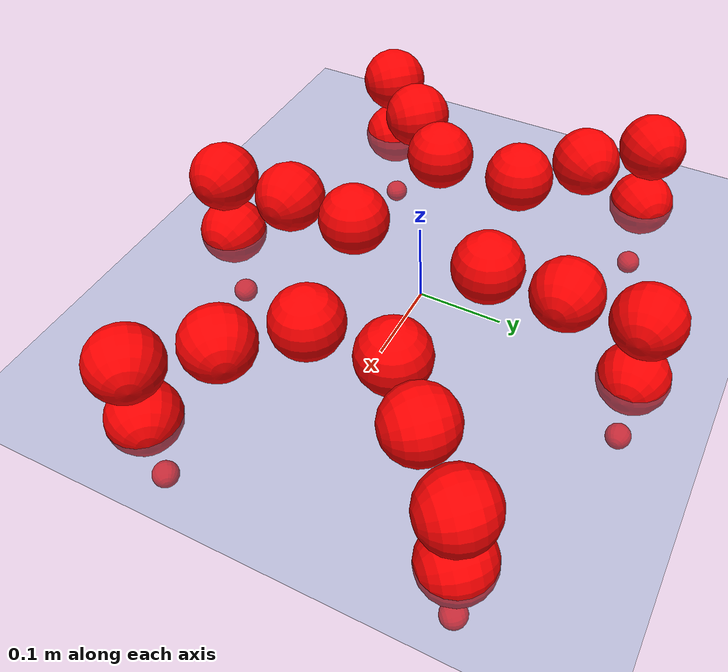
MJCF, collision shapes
<mujoco model="Golem">
  <compiler angle="radian" assetdir="assets" balanceinertia="true" inertiafromgeom="false"/>

  <option timestep="0.005" density="1.2" viscosity="2e-05"/>

  <size nkey="1"/>

  <visual>
    <quality shadowsize="8192"/>
    <map shadowclip="0.5"/>
  </visual>

  <default>
    <default class="/">
      <joint armature="0.01" damping="0.01" frictionloss="0.01"/>
      <geom contype="0" conaffinity="0" group="1" solref="-1000 -80"/>
      <site size="0.01 0.005 0.005" group="5"/>
      <general forcelimited="true" biastype="affine" gainprm="25" biasprm="0 -25 -0.5"/>
      <default class="visual">
        <geom type="mesh" group="2"/>
      </default>
      <default class="collision">
        <geom group="3"/>
      </default>
      <default class="foot">
        <geom size="0.01 0 0" condim="6" group="4" priority="1" solimp="0.015 1 0.01"/>
      </default>
      <default class="reward_collision_sphere">
        <geom group="5" rgba="1 0 0 1"/>
      </default>
    </default>
  </default>

  <asset>
    <texture type="skybox" colorspace="auto" name="//unnamed_texture_0" builtin="gradient" rgb1="0.95 0.95 0.95" rgb2="0.95 0.95 0.95" width="100" height="600"/>
    <texture type="2d" colorspace="auto" name="texplane" builtin="checker" rgb1="0.345 0.575 0.748" rgb2="0.345 0.575 0.748" markrgb="1 1 1" width="512" height="512"/>
    <material name="MatPlane" class="/" texture="texplane" texuniform="true" texrepeat="2 2" specular="0.9"/>
    <mesh name="body" class="/" file="body.stl" scale="0.001 0.001 0.001"/>
    <mesh name="coxa" class="/" file="coxa.stl" scale="0.001 0.001 0.001"/>
    <mesh name="femur" class="/" file="femur.stl" scale="0.001 0.001 0.001"/>
    <mesh name="tibia" class="/" file="tibia.stl" scale="0.001 0.001 0.001"/>
    <mesh name="tarsus" class="/" file="tarsus.stl" scale="0.001 0.001 0.001"/>
  </asset>

  <worldbody>
    <geom name="floor" class="/" size="100 100 0.125" type="plane" group="0" material="MatPlane"/>
    <light name="toplight_shadow" class="/" pos="0 0 5" dir="0.0990148 0.0990148 -0.990148" type="directional" ambient="0.04 0.04 0.04" diffuse="0.55 0.55 0.55" specular="0.12 0.12 0.12"/>
    <light name="toplight_fill" class="/" pos="0 0 5" dir="0.0990148 0.0990148 -0.990148" type="directional" castshadow="false" ambient="0.04 0.04 0.04" diffuse="0.3 0.3 0.3" specular="0.08 0.08 0.08"/>
    <body name="trunk" pos="-0.000802555 -0.000841721 -0.000198775" quat="1 -0.000396883 0.000526322 -0.000557723">
      <inertial pos="-0.00149459 -0.00283655 -0.00339318" quat="0.999948 -0.000443388 0.00827946 -0.00598853" mass="4.13464" diaginertia="0.0107662 0.00472751 0.029553"/>
      <joint name="//unnamed_joint_0" type="free"/>
      <geom name="//unnamed_geom_1" class="/" pos="0 0 0.0788713" quat="1 0 0 0" type="mesh" rgba="0.9 0.9 0.9 1" mesh="body"/>
      <site name="imu" class="/" pos="0.135469 -0.00107893 0.111687" size="0.0103202"/>
      <camera name="track" class="/" pos="0 -1.71569 0" quat="0.707107 0.707107 0 0" mode="trackcom"/>
      <camera name="ego_camera" class="/" pos="0.130763 0 0.123236" quat="-0.5 -0.5 0.5 0.5"/>
      <body name="coxa_RR" pos="-0.178747 -0.0718603 0.0797035" quat="0.382822 0.000220573 0.00015142 -0.923822">
        <inertial pos="0.00153981 0.00258501 0.0026277" quat="0.999896 0.00989667 -0.00886879 0.0056285" mass="0.210612" diaginertia="0.010132 0.00473675 0.0270785"/>
        <joint name="coxa_joint_RR" class="/" pos="0 0 0" axis="-0.00653746 0.000413765 -0.999979" range="-3.14084 3.19444" armature="0.00903363" damping="0.000460271" frictionloss="0.0104864"/>
        <geom name="//unnamed_geom_2" class="/" type="mesh" rgba="0.2 0.2 0.2 1" mesh="coxa"/>
        <geom name="//unnamed_geom_3" class="reward_collision_sphere" size="0.041281" pos="-0.030176 0 0"/>
        <body name="femur_RR" pos="0.0619881 -0.000509254 -0.000597559" quat="0.50039 -0.5002 0.50029 0.499119">
          <inertial pos="-0.00119828 0.00248091 0.00103423" quat="0.999989 -0.00443827 0.000356679 -0.00116414" mass="0.212041" diaginertia="0.0100352 0.00451127 0.0283299"/>
          <joint name="femur_joint_RR" class="/" pos="0 0 0" axis="-0.00527977 -0.00362423 -0.999979" range="-3.10072 3.1067" armature="0.0103648" damping="0.034733" frictionloss="0.0116721"/>
          <geom name="//unnamed_geom_4" class="/" type="mesh" rgba="0.9 0.9 0.9 1" mesh="femur"/>
          <geom name="//unnamed_geom_5" class="reward_collision_sphere" size="0.041281"/>
          <body name="tibia_RR" pos="0.00182697 -0.0944354 0.00221038" quat="-0.00103732 0.999999 -0.000280432 -0.000319315">
            <inertial pos="-0.000687845 0.00123709 -0.000116699" quat="0.999916 0.00389915 -0.00604399 0.0107425" mass="0.209494" diaginertia="0.0105107 0.004571 0.0282434"/>
            <joint name="tibia_joint_RR" class="/" pos="0 0 0" axis="-4.85439e-05 1.76139e-05 1" range="-3.19257 3.157" armature="0.0104244" damping="0.0107834" frictionloss="0.00985928"/>
            <geom name="//unnamed_geom_6" class="/" type="mesh" rgba="0.2 0.2 0.2 1" mesh="tibia"/>
            <geom name="//unnamed_geom_7" class="reward_collision_sphere" size="0.041281"/>
            <body name="tarsus_RR" pos="0.0896919 0.00042303 -0.00072026" quat="1 -0.000109894 0.000400472 0.00071818">
              <inertial pos="0.0615084 -0.000123575 -0.00260044" quat="0.499194 0.500654 0.497113 0.50302" mass="0.215352" diaginertia="0.00986286 0.00455726 0.0278223"/>
              <joint name="tarsus_joint_RR" class="/" pos="0 0 0" axis="-0.0187325 0.00717933 0.999799" range="-3.15074 3.14239" armature="0.0109412" damping="0.0485416" frictionloss="0.0102118"/>
              <geom name="//unnamed_geom_8" class="/" type="mesh" rgba="0.9 0.9 0.9 1" mesh="tarsus"/>
              <geom name="foot_1" class="foot" size="0.00930255" pos="0.112657 0 0" quat="0 -0.707107 0 0.707107"/>
              <geom name="//unnamed_geom_10" class="reward_collision_sphere" size="0.041281"/>
              <geom name="//unnamed_geom_11" class="reward_collision_sphere" size="0.0154804" pos="0.108131 0 0"/>
              <site name="foot_1" class="foot" pos="0.112657 0 0" quat="0 -0.707107 0 0.707107" size="0.0103202"/>
            </body>
          </body>
        </body>
      </body>
      <body name="coxa_RM" pos="0.00112567 -0.114299 0.0845726" quat="0.707014 0.000861442 -0.000771066 -0.707199">
        <inertial pos="0.000981861 -8.18156e-05 -0.00200804" quat="0.99999 0.000808822 0.00432024 2.26404e-05" mass="0.215823" diaginertia="0.0098222 0.00470468 0.0277157"/>
        <joint name="coxa_joint_RM" class="/" pos="0 0 0" axis="0.000278677 -3.71872e-05 -1" stiffness="0.00486214" range="-3.13297 3.15074" armature="0.0108148" damping="0.0199119" frictionloss="0.0107992"/>
        <geom name="//unnamed_geom_12" class="/" type="mesh" rgba="0.2 0.2 0.2 1" mesh="coxa"/>
        <geom name="//unnamed_geom_13" class="reward_collision_sphere" size="0.041281" pos="-0.030176 0 0"/>
        <body name="femur_RM" pos="0.0571526 -0.0024025 -0.000798583" quat="0.499702 -0.500704 0.500254 0.499339">
          <inertial pos="0.000763571 -0.00215491 0.00263916" quat="0.999937 0.00681166 -0.00895364 -0.000245251" mass="0.234701" diaginertia="0.0103383 0.00478537 0.0285486"/>
          <joint name="femur_joint_RM" class="/" pos="0 0 0" axis="0.00174668 0.00168433 -0.999997" range="-3.08955 3.08674" armature="0.0103" damping="0.0262497" frictionloss="0.0104136"/>
          <geom name="//unnamed_geom_14" class="/" type="mesh" rgba="0.9 0.9 0.9 1" mesh="femur"/>
          <geom name="//unnamed_geom_15" class="reward_collision_sphere" size="0.041281"/>
          <body name="tibia_RM" pos="0.000747019 -0.0922985 0.00229302" quat="0.000502241 0.999999 0.00112542 0.000570002">
            <inertial pos="-0.00110402 0.000865674 -0.0025381" quat="0.999997 -0.00158592 -0.00201151 -0.000165203" mass="0.221913" diaginertia="0.0102806 0.00465667 0.0290698"/>
            <joint name="tibia_joint_RM" class="/" pos="0 0 0" axis="-0.0123208 0.00262574 0.999921" stiffness="0.0114489" range="-3.14115 3.14778" armature="0.00954168" damping="0.00566809" frictionloss="0.00898619"/>
            <geom name="//unnamed_geom_16" class="/" type="mesh" rgba="0.2 0.2 0.2 1" mesh="tibia"/>
            <geom name="//unnamed_geom_17" class="reward_collision_sphere" size="0.041281"/>
            <body name="tarsus_RM" pos="0.0868194 0.00109892 -0.000324229" quat="1 -0.000432679 -0.000288568 -0.000126074">
              <inertial pos="0.0615129 0.000642078 0.000514657" quat="0.491007 0.509914 0.497601 0.501291" mass="0.220654" diaginertia="0.0103048 0.00466522 0.0299708"/>
              <joint name="tarsus_joint_RM" class="/" pos="0 0 0" axis="-0.00110067 -0.000435803 0.999999" stiffness="0.00409189" range="-3.16096 3.08642" armature="0.00925268" damping="0.0101017" frictionloss="0.0116784"/>
              <geom name="//unnamed_geom_18" class="/" type="mesh" rgba="0.9 0.9 0.9 1" mesh="tarsus"/>
              <geom name="foot_2" class="foot" size="0.0114332" pos="0.112657 0 0" quat="0 -0.707107 0 0.707107"/>
              <geom name="//unnamed_geom_20" class="reward_collision_sphere" size="0.041281"/>
              <geom name="//unnamed_geom_21" class="reward_collision_sphere" size="0.0154804" pos="0.108131 0 0"/>
              <site name="foot_2" class="foot" pos="0.112657 0 0" quat="0 -0.707107 0 0.707107" size="0.0103202"/>
            </body>
          </body>
        </body>
      </body>
      <body name="coxa_RF" pos="0.180136 -0.0715161 0.0809079" quat="0.923831 0.000399789 0.000278646 -0.382799">
        <inertial pos="-0.00123018 -0.0014925 0.000160433" quat="0.999994 0.00188214 -0.0027397 -0.000459139" mass="0.224034" diaginertia="0.00995458 0.0045402 0.0280127"/>
        <joint name="coxa_joint_RF" class="/" pos="0 0 0" axis="0.00338496 0.0152273 -0.999878" stiffness="0.0205038" range="-3.08981 3.16925" armature="0.00881106" damping="0.0126508" frictionloss="0.0109629"/>
        <geom name="//unnamed_geom_22" class="/" type="mesh" rgba="0.2 0.2 0.2 1" mesh="coxa"/>
        <geom name="//unnamed_geom_23" class="reward_collision_sphere" size="0.041281" pos="-0.030176 0 0"/>
        <body name="femur_RF" pos="0.0612389 -0.000889996 -0.000161285" quat="0.500074 -0.500294 0.499887 0.499745">
          <inertial pos="3.33307e-05 -0.00196303 -0.00217568" quat="0.999998 -0.00111516 -0.000941055 -0.00115812" mass="0.229627" diaginertia="0.0105204 0.00475287 0.0296971"/>
          <joint name="femur_joint_RF" class="/" pos="0 0 0" axis="0.0121482 -0.00314396 -0.999921" range="-3.1544 3.09838" armature="0.00887584" damping="0.0103412" frictionloss="0.0105878"/>
          <geom name="//unnamed_geom_24" class="/" type="mesh" rgba="0.9 0.9 0.9 1" mesh="femur"/>
          <geom name="//unnamed_geom_25" class="reward_collision_sphere" size="0.041281"/>
          <body name="tibia_RF" pos="-0.00355914 -0.0904052 0.000600739" quat="0.000569192 1 0.000652862 -0.000485575">
            <inertial pos="0.00171692 -0.000377665 0.000917319" quat="0.999999 0.00115246 -0.000923702 -1.70884e-05" mass="0.213082" diaginertia="0.0104814 0.0045738 0.0273018"/>
            <joint name="tibia_joint_RF" class="/" pos="0 0 0" axis="-0.000559512 0.00469391 0.999989" range="-3.14355 3.10877" armature="0.011034" damping="0.000291177" frictionloss="0.0117295"/>
            <geom name="//unnamed_geom_26" class="/" type="mesh" rgba="0.2 0.2 0.2 1" mesh="tibia"/>
            <geom name="//unnamed_geom_27" class="reward_collision_sphere" size="0.041281"/>
            <body name="tarsus_RF" pos="0.0854111 -0.000642654 -0.000708888" quat="0.999999 0.00100991 -0.000428452 -0.00050146">
              <inertial pos="0.0584998 0.000162522 0.000596835" quat="0.494908 0.499348 0.500772 0.50492" mass="0.216241" diaginertia="0.00998389 0.00455071 0.0281099"/>
              <joint name="tarsus_joint_RF" class="/" pos="0 0 0" axis="-0.00960056 0.00971066 0.999907" stiffness="9.21924e-05" range="-3.14149 3.1381" armature="0.0103289" damping="0.00937889" frictionloss="0.0111769"/>
              <geom name="//unnamed_geom_28" class="/" type="mesh" rgba="0.9 0.9 0.9 1" mesh="tarsus"/>
              <geom name="foot_3" class="foot" size="0.00998609" pos="0.112657 0 0" quat="0 -0.707107 0 0.707107"/>
              <geom name="//unnamed_geom_30" class="reward_collision_sphere" size="0.041281"/>
              <geom name="//unnamed_geom_31" class="reward_collision_sphere" size="0.0154804" pos="0.108131 0 0"/>
              <site name="foot_3" class="foot" pos="0.112657 0 0" quat="0 -0.707107 0 0.707107" size="0.0103202"/>
            </body>
          </body>
        </body>
      </body>
      <body name="coxa_LR" pos="-0.182067 0.0750026 0.0791161" quat="0.382824 0.00039399 -8.62318e-05 0.923821">
        <inertial pos="0.000367713 0.000338985 0.00316138" quat="0.999991 0.000727939 0.00370099 0.001846" mass="0.2111" diaginertia="0.0102535 0.00468514 0.0290359"/>
        <joint name="coxa_joint_LR" class="/" pos="0 0 0" axis="-0.00252089 0.00097037 -0.999996" range="-3.14107 3.14209" armature="0.0090892" damping="0.0128257" frictionloss="0.00983219"/>
        <geom name="//unnamed_geom_32" class="/" type="mesh" rgba="0.2 0.2 0.2 1" mesh="coxa"/>
        <geom name="//unnamed_geom_33" class="reward_collision_sphere" size="0.041281" pos="-0.030176 0 0"/>
        <body name="femur_LR" pos="0.0589876 -0.000213604 0.00190745" quat="0.500122 -0.501077 0.499773 0.499026">
          <inertial pos="-0.000742791 -0.00141038 0.00219067" quat="0.999914 -0.0112111 0.00670894 0.000728345" mass="0.227849" diaginertia="0.010611 0.00453681 0.0290907"/>
          <joint name="femur_joint_LR" class="/" pos="0 0 0" axis="0.0129835 -0.00149523 0.999915" stiffness="0.0011283" range="-3.11981 3.12154" armature="0.0105077" damping="0.0137775" frictionloss="0.00892231"/>
          <geom name="//unnamed_geom_34" class="/" type="mesh" rgba="0.9 0.9 0.9 1" mesh="femur"/>
          <geom name="//unnamed_geom_35" class="reward_collision_sphere" size="0.041281"/>
          <body name="tibia_LR" pos="0.000950501 -0.0926008 0.00069818" quat="-7.24119e-06 0.999999 -0.00129668 2.37982e-05">
            <inertial pos="0.00257574 -0.00260071 0.00144809" quat="0.999968 -0.000441014 0.008016 -0.000157736" mass="0.220021" diaginertia="0.00997318 0.00452375 0.027395"/>
            <joint name="tibia_joint_LR" class="/" pos="0 0 0" axis="-0.00118255 0.00209038 -0.999997" range="-3.16743 3.14592" armature="0.00910293" damping="0.0150154" frictionloss="0.00892237"/>
            <geom name="//unnamed_geom_36" class="/" type="mesh" rgba="0.2 0.2 0.2 1" mesh="tibia"/>
            <geom name="//unnamed_geom_37" class="reward_collision_sphere" size="0.041281"/>
            <body name="tarsus_LR" pos="0.0879968 -0.00118917 0.00268889" quat="1 -0.000174958 -0.000261978 0.000366">
              <inertial pos="0.0623606 -0.000766808 0.00270428" quat="0.499329 0.500292 0.499617 0.500761" mass="0.210756" diaginertia="0.00993054 0.00466669 0.0281828"/>
              <joint name="tarsus_joint_LR" class="/" pos="0 0 0" axis="0.0072355 -0.00200486 -0.999972" stiffness="0.00809154" range="-3.17596 3.13234" armature="0.00919977" damping="0.0251043" frictionloss="0.0105633"/>
              <geom name="//unnamed_geom_38" class="/" type="mesh" rgba="0.9 0.9 0.9 1" mesh="tarsus"/>
              <geom name="foot_4" class="foot" size="0.0114607" pos="0.112657 0 0" quat="0.707107 0 -0.707107 0"/>
              <geom name="//unnamed_geom_40" class="reward_collision_sphere" size="0.041281"/>
              <geom name="//unnamed_geom_41" class="reward_collision_sphere" size="0.0154804" pos="0.108131 0 0"/>
              <site name="foot_4" class="foot" pos="0.112657 0 0" quat="0.707107 0 -0.707107 0" size="0.0103202"/>
            </body>
          </body>
        </body>
      </body>
      <body name="coxa_LM" pos="0.00272274 0.113493 0.0812201" quat="0.707929 -0.000168537 -0.000727577 0.706283">
        <inertial pos="-0.00122232 -0.00230193 0.00296422" quat="0.999999 0.000983148 0.000195867 -1.28019e-05" mass="0.218793" diaginertia="0.0106206 0.00464414 0.0282588"/>
        <joint name="coxa_joint_LM" class="/" pos="0 0 0" axis="-0.0145686 -0.000744316 -0.999894" range="-3.1067 3.10513" armature="0.010174" damping="0.0248975" frictionloss="0.0112391"/>
        <geom name="//unnamed_geom_42" class="/" type="mesh" rgba="0.2 0.2 0.2 1" mesh="coxa"/>
        <geom name="//unnamed_geom_43" class="reward_collision_sphere" size="0.041281" pos="-0.030176 0 0"/>
        <body name="femur_LM" pos="0.0605987 0.00142585 -0.00189622" quat="0.499905 -0.50037 0.49926 0.500464">
          <inertial pos="-0.00120047 0.0016496 -0.00217523" quat="0.999998 0.00151309 0.000937363 0.000560981" mass="0.226401" diaginertia="0.0106892 0.00472613 0.0302823"/>
          <joint name="femur_joint_LM" class="/" pos="0 0 0" axis="0.0129952 0.00716127 0.99989" stiffness="0.00388057" range="-3.08637 3.13741" armature="0.0115395" damping="0.00723428" frictionloss="0.0104736"/>
          <geom name="//unnamed_geom_44" class="/" type="mesh" rgba="0.9 0.9 0.9 1" mesh="femur"/>
          <geom name="//unnamed_geom_45" class="reward_collision_sphere" size="0.041281"/>
          <body name="tibia_LM" pos="-0.00133905 -0.0887231 -0.000573528" quat="4.98179e-05 1 -5.24119e-05 2.44556e-05">
            <inertial pos="0.00284653 -0.000690787 0.00237217" quat="0.999907 0.0107417 -0.00840364 0.000485675" mass="0.22503" diaginertia="0.010231 0.00454045 0.0271569"/>
            <joint name="tibia_joint_LM" class="/" pos="0 0 0" axis="0.00872358 -0.000573452 -0.999962" range="-3.19344 3.15329" armature="0.0101993" damping="0.00985321" frictionloss="0.00947159"/>
            <geom name="//unnamed_geom_46" class="/" type="mesh" rgba="0.2 0.2 0.2 1" mesh="tibia"/>
            <geom name="//unnamed_geom_47" class="reward_collision_sphere" size="0.041281"/>
            <body name="tarsus_LM" pos="0.0889344 -0.00101632 0.00263398" quat="1 -8.32787e-05 8.53096e-05 0.000151735">
              <inertial pos="0.0573252 0.00013386 -0.000404985" quat="0.493067 0.497513 0.506804 0.502509" mass="0.211107" diaginertia="0.0104935 0.00465519 0.0283396"/>
              <joint name="tarsus_joint_LM" class="/" pos="0 0 0" axis="0.00388595 -0.0119214 -0.999921" range="-3.14445 3.11662" armature="0.0108036" damping="0" frictionloss="0.0103897"/>
              <geom name="//unnamed_geom_48" class="/" type="mesh" rgba="0.9 0.9 0.9 1" mesh="tarsus"/>
              <geom name="foot_5" class="foot" size="0.0115242" pos="0.112657 0 0" quat="0.707107 0 -0.707107 0"/>
              <geom name="//unnamed_geom_50" class="reward_collision_sphere" size="0.041281"/>
              <geom name="//unnamed_geom_51" class="reward_collision_sphere" size="0.0154804" pos="0.108131 0 0"/>
              <site name="foot_5" class="foot" pos="0.112657 0 0" quat="0.707107 0 -0.707107 0" size="0.0103202"/>
            </body>
          </body>
        </body>
      </body>
      <body name="coxa_LF" pos="0.179648 0.0707381 0.0793989" quat="0.923991 6.97937e-05 0.000218371 0.382414">
        <inertial pos="-7.70122e-05 0.00263764 0.000418478" quat="1 -0.000383488 -0.000172362 3.28728e-05" mass="0.217226" diaginertia="0.0100159 0.00454291 0.0279988"/>
        <joint name="coxa_joint_LF" class="/" pos="0 0 0" axis="-0.00847017 0.00504149 -0.999951" range="-3.12786 3.08913" armature="0.011596" damping="0.00913121" frictionloss="0.01012"/>
        <geom name="//unnamed_geom_52" class="/" type="mesh" rgba="0.2 0.2 0.2 1" mesh="coxa"/>
        <geom name="//unnamed_geom_53" class="reward_collision_sphere" size="0.041281" pos="-0.030176 0 0"/>
        <body name="femur_LF" pos="0.0580195 -0.00249074 0.00268211" quat="0.500838 -0.500455 0.499915 0.49879">
          <inertial pos="0.000382803 0.00228532 -0.00272159" quat="0.999995 0.000576526 -0.000424433 0.0032188" mass="0.216541" diaginertia="0.00999939 0.00450915 0.0284503"/>
          <joint name="femur_joint_LF" class="/" pos="0 0 0" axis="0.000453974 -8.83573e-05 1" stiffness="0.00516362" range="-3.13262 3.16011" armature="0.0102832" damping="0.00730154" frictionloss="0.011533"/>
          <geom name="//unnamed_geom_54" class="/" type="mesh" rgba="0.9 0.9 0.9 1" mesh="femur"/>
          <geom name="//unnamed_geom_55" class="reward_collision_sphere" size="0.041281"/>
          <body name="tibia_LF" pos="0.00160088 -0.0942177 0.00281396" quat="0.0001699 0.999999 0.000149735 0.00125591">
            <inertial pos="0.0027768 0.00248153 0.0017495" quat="0.999983 0.00208777 -0.00349889 -0.00418189" mass="0.222567" diaginertia="0.0103092 0.00474802 0.0297255"/>
            <joint name="tibia_joint_LF" class="/" pos="0 0 0" axis="0.000259427 -0.000315511 -1" range="-3.15888 3.09766" armature="0.0118162" damping="0.0182447" frictionloss="0.0101151"/>
            <geom name="//unnamed_geom_56" class="/" type="mesh" rgba="0.2 0.2 0.2 1" mesh="tibia"/>
            <geom name="//unnamed_geom_57" class="reward_collision_sphere" size="0.041281"/>
            <body name="tarsus_LF" pos="0.086533 0.00206394 -0.000405303" quat="0.999999 -0.000311898 -0.00092106 0.000932359">
              <inertial pos="0.060642 0.000923342 0.000232818" quat="0.50084 0.500194 0.499621 0.499344" mass="0.218814" diaginertia="0.00990436 0.00461407 0.0275938"/>
              <joint name="tarsus_joint_LF" class="/" pos="0 0 0" axis="0.0021472 0.00311865 -0.999993" range="-3.14887 3.16104" armature="0.0108617" damping="0" frictionloss="0.0107417"/>
              <geom name="//unnamed_geom_58" class="/" type="mesh" rgba="0.9 0.9 0.9 1" mesh="tarsus"/>
              <geom name="foot_6" class="foot" size="0.0102438" pos="0.112657 0 0" quat="0.707107 0 -0.707107 0"/>
              <geom name="//unnamed_geom_60" class="reward_collision_sphere" size="0.041281"/>
              <geom name="//unnamed_geom_61" class="reward_collision_sphere" size="0.0154804" pos="0.108131 0 0"/>
              <site name="foot_6" class="foot" pos="0.112657 0 0" quat="0.707107 0 -0.707107 0" size="0.0103202"/>
            </body>
          </body>
        </body>
      </body>
    </body>
  </worldbody>

  <contact>
    <pair class="/" geom1="floor" geom2="foot_1" name="//unnamed_contact_0"/>
    <pair class="/" geom1="floor" geom2="foot_2" name="//unnamed_contact_1"/>
    <pair class="/" geom1="floor" geom2="foot_3" name="//unnamed_contact_2"/>
    <pair class="/" geom1="floor" geom2="foot_4" name="//unnamed_contact_3"/>
    <pair class="/" geom1="floor" geom2="foot_5" name="//unnamed_contact_4"/>
    <pair class="/" geom1="floor" geom2="foot_6" name="//unnamed_contact_5"/>
  </contact>

  <actuator>
    <general name="coxa_joint_RR" class="/" joint="coxa_joint_RR" forcerange="-7.73987 7.73987" gainprm="25.7366" biasprm="0 -25.7366 -0.497555"/>
    <general name="femur_joint_RR" class="/" joint="femur_joint_RR" forcerange="-7.61565 7.61565" gainprm="25.7366" biasprm="0 -25.7366 -0.497555"/>
    <general name="tibia_joint_RR" class="/" joint="tibia_joint_RR" forcerange="-7.41634 7.41634" gainprm="25.7366" biasprm="0 -25.7366 -0.497555"/>
    <general name="tarsus_joint_RR" class="/" joint="tarsus_joint_RR" forcerange="-6.79263 6.79263" gainprm="25.7366" biasprm="0 -25.7366 -0.497555"/>
    <general name="coxa_joint_RM" class="/" joint="coxa_joint_RM" forcerange="-6.76542 6.76542" gainprm="25.7366" biasprm="0 -25.7366 -0.497555"/>
    <general name="femur_joint_RM" class="/" joint="femur_joint_RM" forcerange="-7.4365 7.4365" gainprm="25.7366" biasprm="0 -25.7366 -0.497555"/>
    <general name="tibia_joint_RM" class="/" joint="tibia_joint_RM" forcerange="-7.53185 7.53185" gainprm="25.7366" biasprm="0 -25.7366 -0.497555"/>
    <general name="tarsus_joint_RM" class="/" joint="tarsus_joint_RM" forcerange="-8.3049 8.3049" gainprm="25.7366" biasprm="0 -25.7366 -0.497555"/>
    <general name="coxa_joint_RF" class="/" joint="coxa_joint_RF" forcerange="-7.55317 7.55317" gainprm="25.7366" biasprm="0 -25.7366 -0.497555"/>
    <general name="femur_joint_RF" class="/" joint="femur_joint_RF" forcerange="-7.34222 7.34222" gainprm="25.7366" biasprm="0 -25.7366 -0.497555"/>
    <general name="tibia_joint_RF" class="/" joint="tibia_joint_RF" forcerange="-7.80723 7.80723" gainprm="25.7366" biasprm="0 -25.7366 -0.497555"/>
    <general name="tarsus_joint_RF" class="/" joint="tarsus_joint_RF" forcerange="-8.25741 8.25741" gainprm="25.7366" biasprm="0 -25.7366 -0.497555"/>
    <general name="coxa_joint_LR" class="/" joint="coxa_joint_LR" forcerange="-7.24765 7.24765" gainprm="25.7366" biasprm="0 -25.7366 -0.497555"/>
    <general name="femur_joint_LR" class="/" joint="femur_joint_LR" forcerange="-6.94147 6.94147" gainprm="25.7366" biasprm="0 -25.7366 -0.497555"/>
    <general name="tibia_joint_LR" class="/" joint="tibia_joint_LR" forcerange="-7.97765 7.97765" gainprm="25.7366" biasprm="0 -25.7366 -0.497555"/>
    <general name="tarsus_joint_LR" class="/" joint="tarsus_joint_LR" forcerange="-6.91663 6.91663" gainprm="25.7366" biasprm="0 -25.7366 -0.497555"/>
    <general name="coxa_joint_LM" class="/" joint="coxa_joint_LM" forcerange="-8.17692 8.17692" gainprm="25.7366" biasprm="0 -25.7366 -0.497555"/>
    <general name="femur_joint_LM" class="/" joint="femur_joint_LM" forcerange="-7.32821 7.32821" gainprm="25.7366" biasprm="0 -25.7366 -0.497555"/>
    <general name="tibia_joint_LM" class="/" joint="tibia_joint_LM" forcerange="-7.42709 7.42709" gainprm="25.7366" biasprm="0 -25.7366 -0.497555"/>
    <general name="tarsus_joint_LM" class="/" joint="tarsus_joint_LM" forcerange="-6.78444 6.78444" gainprm="25.7366" biasprm="0 -25.7366 -0.497555"/>
    <general name="coxa_joint_LF" class="/" joint="coxa_joint_LF" forcerange="-7.49464 7.49464" gainprm="25.7366" biasprm="0 -25.7366 -0.497555"/>
    <general name="femur_joint_LF" class="/" joint="femur_joint_LF" forcerange="-7.53661 7.53661" gainprm="25.7366" biasprm="0 -25.7366 -0.497555"/>
    <general name="tibia_joint_LF" class="/" joint="tibia_joint_LF" forcerange="-8.3031 8.3031" gainprm="25.7366" biasprm="0 -25.7366 -0.497555"/>
    <general name="tarsus_joint_LF" class="/" joint="tarsus_joint_LF" forcerange="-7.33358 7.33358" gainprm="25.7366" biasprm="0 -25.7366 -0.497555"/>
  </actuator>

  <sensor>
    <gyro site="imu" name="imu_angular_velocity"/>
    <velocimeter site="imu" name="imu_linear_velocity"/>
    <framelinvel objtype="site" objname="foot_1" name="foot_1_global_linear_velocity"/>
    <framelinvel objtype="site" objname="foot_2" name="foot_2_global_linear_velocity"/>
    <framelinvel objtype="site" objname="foot_3" name="foot_3_global_linear_velocity"/>
    <framelinvel objtype="site" objname="foot_4" name="foot_4_global_linear_velocity"/>
    <framelinvel objtype="site" objname="foot_5" name="foot_5_global_linear_velocity"/>
    <framelinvel objtype="site" objname="foot_6" name="foot_6_global_linear_velocity"/>
  </sensor>

  <keyframe>
    <key name="home" qpos="0 0 0.1457 1 0 0 0 0 0 0 0 0 0 0 0 0 0 0 0 0 0 0 0 0 0 0 0 0 0 0 0"/>
  </keyframe>
</mujoco>
